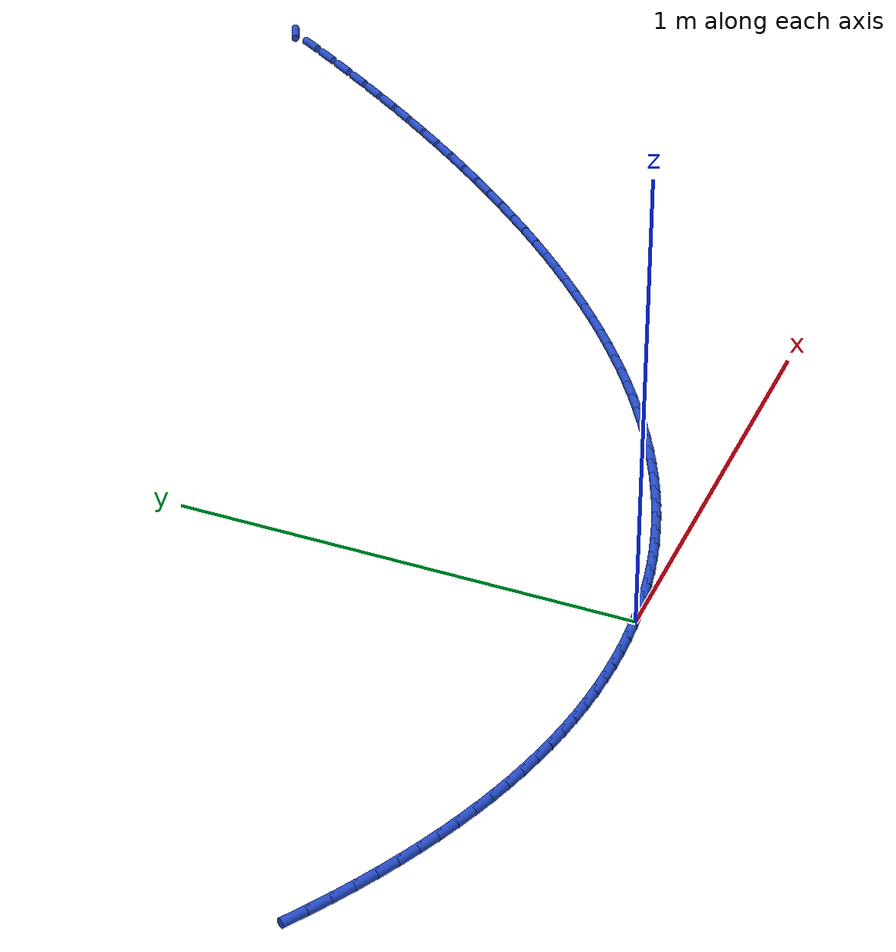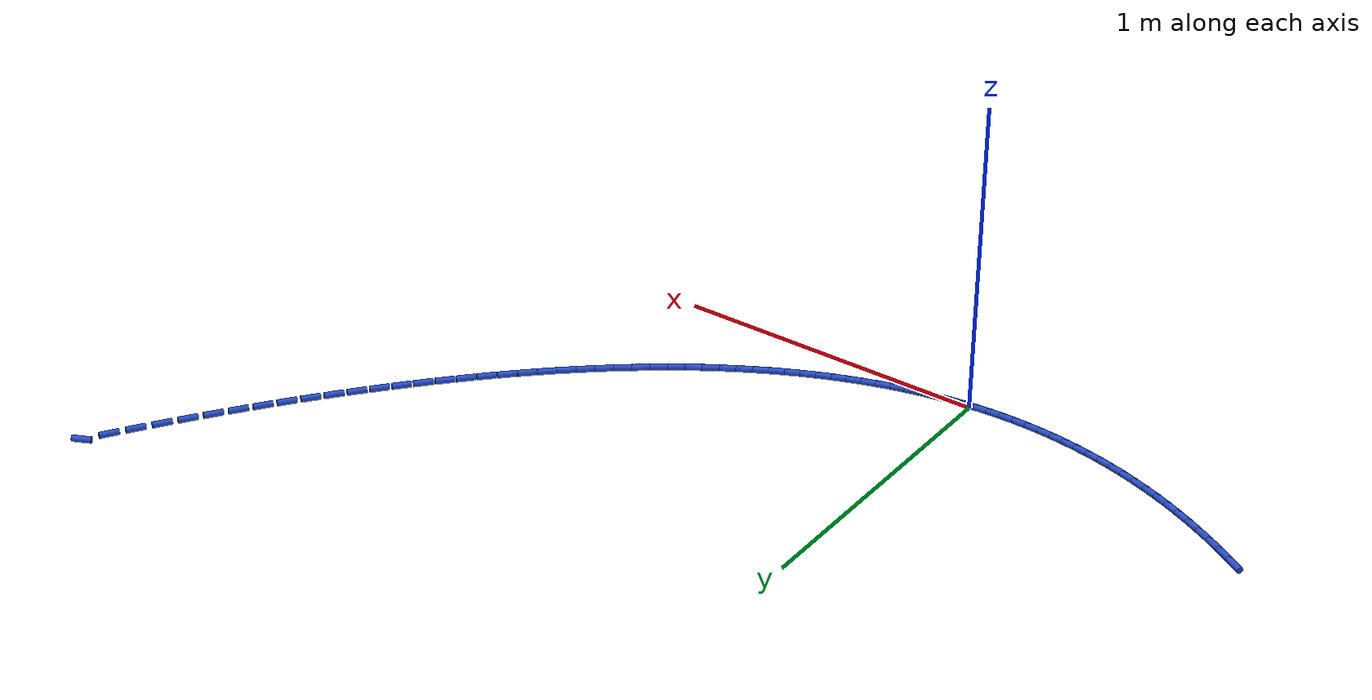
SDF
<?xml version='1.0' encoding='us-ascii'?>
<sdf version="1.4">
<model name="line"><static>1</static><link name="link_0"><pose frame="">-1.0 0.26578743000738836 0.01 0 1.57 -0.5543240321054791</pose><collision name="collision"><geometry><cylinder><radius>0.01</radius><length>0.06</length></cylinder></geometry></collision><visual name="visual"><material><script><name>RepeatedBlueTexture</name><uri>file://materials/scripts/repeated.material</uri></script></material><geometry><cylinder><radius>0.01</radius><length>0.06</length></cylinder></geometry></visual></link><static>1</static><link name="link_1"><pose frame="">-0.9565217391304348 0.23887132165634306 0.01 0 1.57 -0.5307715101158248</pose><collision name="collision"><geometry><cylinder><radius>0.01</radius><length>0.06</length></cylinder></geometry></collision><visual name="visual"><material><script><name>RepeatedBlueTexture</name><uri>file://materials/scripts/repeated.material</uri></script></material><geometry><cylinder><radius>0.01</radius><length>0.06</length></cylinder></geometry></visual></link><static>1</static><link name="link_2"><pose frame="">-0.9130434782608696 0.2133515890446918 0.01 0 1.57 -0.5065494110816988</pose><collision name="collision"><geometry><cylinder><radius>0.01</radius><length>0.06</length></cylinder></geometry></collision><visual name="visual"><material><script><name>RepeatedBlueTexture</name><uri>file://materials/scripts/repeated.material</uri></script></material><geometry><cylinder><radius>0.01</radius><length>0.06</length></cylinder></geometry></visual></link><static>1</static><link name="link_3"><pose frame="">-0.8695652173913043 0.18922823217243423 0.01 0 1.57 -0.48165841015056077</pose><collision name="collision"><geometry><cylinder><radius>0.01</radius><length>0.06</length></cylinder></geometry></collision><visual name="visual"><material><script><name>RepeatedBlueTexture</name><uri>file://materials/scripts/repeated.material</uri></script></material><geometry><cylinder><radius>0.01</radius><length>0.06</length></cylinder></geometry></visual></link><static>1</static><link name="link_4"><pose frame="">-0.8260869565217391 0.16650125103957067 0.01 0 1.57 -0.4561025332396012</pose><collision name="collision"><geometry><cylinder><radius>0.01</radius><length>0.06</length></cylinder></geometry></collision><visual name="visual"><material><script><name>RepeatedBlueTexture</name><uri>file://materials/scripts/repeated.material</uri></script></material><geometry><cylinder><radius>0.01</radius><length>0.06</length></cylinder></geometry></visual></link><static>1</static><link name="link_5"><pose frame="">-0.782608695652174 0.14517064564610094 0.01 0 1.57 -0.42988949471557325</pose><collision name="collision"><geometry><cylinder><radius>0.01</radius><length>0.06</length></cylinder></geometry></collision><visual name="visual"><material><script><name>RepeatedBlueTexture</name><uri>file://materials/scripts/repeated.material</uri></script></material><geometry><cylinder><radius>0.01</radius><length>0.06</length></cylinder></geometry></visual></link><static>1</static><link name="link_6"><pose frame="">-0.7391304347826086 0.12523641599202506 0.01 0 1.57 -0.4030310188374935</pose><collision name="collision"><geometry><cylinder><radius>0.01</radius><length>0.06</length></cylinder></geometry></collision><visual name="visual"><material><script><name>RepeatedBlueTexture</name><uri>file://materials/scripts/repeated.material</uri></script></material><geometry><cylinder><radius>0.01</radius><length>0.06</length></cylinder></geometry></visual></link><static>1</static><link name="link_7"><pose frame="">-0.6956521739130435 0.10669856207734317 0.01 0 1.57 -0.37554313374267445</pose><collision name="collision"><geometry><cylinder><radius>0.01</radius><length>0.06</length></cylinder></geometry></collision><visual name="visual"><material><script><name>RepeatedBlueTexture</name><uri>file://materials/scripts/repeated.material</uri></script></material><geometry><cylinder><radius>0.01</radius><length>0.06</length></cylinder></geometry></visual></link><static>1</static><link name="link_8"><pose frame="">-0.6521739130434783 0.08955708390205513 0.01 0 1.57 -0.3474464256340108</pose><collision name="collision"><geometry><cylinder><radius>0.01</radius><length>0.06</length></cylinder></geometry></collision><visual name="visual"><material><script><name>RepeatedBlueTexture</name><uri>file://materials/scripts/repeated.material</uri></script></material><geometry><cylinder><radius>0.01</radius><length>0.06</length></cylinder></geometry></visual></link><static>1</static><link name="link_9"><pose frame="">-0.6086956521739131 0.07381198146616093 0.01 0 1.57 -0.3187662400958338</pose><collision name="collision"><geometry><cylinder><radius>0.01</radius><length>0.06</length></cylinder></geometry></collision><visual name="visual"><material><script><name>RepeatedBlueTexture</name><uri>file://materials/scripts/repeated.material</uri></script></material><geometry><cylinder><radius>0.01</radius><length>0.06</length></cylinder></geometry></visual></link><static>1</static><link name="link_10"><pose frame="">-0.5652173913043479 0.05946325476966063 0.01 0 1.57 -0.28953281727080593</pose><collision name="collision"><geometry><cylinder><radius>0.01</radius><length>0.06</length></cylinder></geometry></collision><visual name="visual"><material><script><name>RepeatedBlueTexture</name><uri>file://materials/scripts/repeated.material</uri></script></material><geometry><cylinder><radius>0.01</radius><length>0.06</length></cylinder></geometry></visual></link><static>1</static><link name="link_11"><pose frame="">-0.5217391304347826 0.04651090381255419 0.01 0 1.57 -0.25978134810674064</pose><collision name="collision"><geometry><cylinder><radius>0.01</radius><length>0.06</length></cylinder></geometry></collision><visual name="visual"><material><script><name>RepeatedBlueTexture</name><uri>file://materials/scripts/repeated.material</uri></script></material><geometry><cylinder><radius>0.01</radius><length>0.06</length></cylinder></geometry></visual></link><static>1</static><link name="link_12"><pose frame="">-0.4782608695652174 0.03495492859484163 0.01 0 1.57 -0.22955194014041863</pose><collision name="collision"><geometry><cylinder><radius>0.01</radius><length>0.06</length></cylinder></geometry></collision><visual name="visual"><material><script><name>RepeatedBlueTexture</name><uri>file://materials/scripts/repeated.material</uri></script></material><geometry><cylinder><radius>0.01</radius><length>0.06</length></cylinder></geometry></visual></link><static>1</static><link name="link_13"><pose frame="">-0.4347826086956522 0.024795329116522997 0.01 0 1.57 -0.19888948339221402</pose><collision name="collision"><geometry><cylinder><radius>0.01</radius><length>0.06</length></cylinder></geometry></collision><visual name="visual"><material><script><name>RepeatedBlueTexture</name><uri>file://materials/scripts/repeated.material</uri></script></material><geometry><cylinder><radius>0.01</radius><length>0.06</length></cylinder></geometry></visual></link><static>1</static><link name="link_14"><pose frame="">-0.3913043478260869 0.016032105377598208 0.01 0 1.57 -0.16784340990574292</pose><collision name="collision"><geometry><cylinder><radius>0.01</radius><length>0.06</length></cylinder></geometry></collision><visual name="visual"><material><script><name>RepeatedBlueTexture</name><uri>file://materials/scripts/repeated.material</uri></script></material><geometry><cylinder><radius>0.01</radius><length>0.06</length></cylinder></geometry></visual></link><static>1</static><link name="link_15"><pose frame="">-0.34782608695652173 0.008665257378067337 0.01 0 1.57 -0.1364673442098012</pose><collision name="collision"><geometry><cylinder><radius>0.01</radius><length>0.06</length></cylinder></geometry></collision><visual name="visual"><material><script><name>RepeatedBlueTexture</name><uri>file://materials/scripts/repeated.material</uri></script></material><geometry><cylinder><radius>0.01</radius><length>0.06</length></cylinder></geometry></visual></link><static>1</static><link name="link_16"><pose frame="">-0.30434782608695654 0.0026947851179303095 0.01 0 1.57 -0.10481864634996019</pose><collision name="collision"><geometry><cylinder><radius>0.01</radius><length>0.06</length></cylinder></geometry></collision><visual name="visual"><material><script><name>RepeatedBlueTexture</name><uri>file://materials/scripts/repeated.material</uri></script></material><geometry><cylinder><radius>0.01</radius><length>0.06</length></cylinder></geometry></visual></link><static>1</static><link name="link_17"><pose frame="">-0.26086956521739135 -0.0018793114028127916 0.01 0 1.57 -0.07295785389700156</pose><collision name="collision"><geometry><cylinder><radius>0.01</radius><length>0.06</length></cylinder></geometry></collision><visual name="visual"><material><script><name>RepeatedBlueTexture</name><uri>file://materials/scripts/repeated.material</uri></script></material><geometry><cylinder><radius>0.01</radius><length>0.06</length></cylinder></geometry></visual></link><static>1</static><link name="link_18"><pose frame="">-0.21739130434782616 -0.005057032184162064 0.01 0 1.57 -0.04094803418190355</pose><collision name="collision"><geometry><cylinder><radius>0.01</radius><length>0.06</length></cylinder></geometry></collision><visual name="visual"><material><script><name>RepeatedBlueTexture</name><uri>file://materials/scripts/repeated.material</uri></script></material><geometry><cylinder><radius>0.01</radius><length>0.06</length></cylinder></geometry></visual></link><static>1</static><link name="link_19"><pose frame="">-0.17391304347826086 -0.006838377226117381 0.01 0 1.57 -0.008854062581946752</pose><collision name="collision"><geometry><cylinder><radius>0.01</radius><length>0.06</length></cylinder></geometry></collision><visual name="visual"><material><script><name>RepeatedBlueTexture</name><uri>file://materials/scripts/repeated.material</uri></script></material><geometry><cylinder><radius>0.01</radius><length>0.06</length></cylinder></geometry></visual></link><static>1</static><link name="link_20"><pose frame="">-0.13043478260869568 -0.007223346528678898 0.01 0 1.57 0.02325815337118715</pose><collision name="collision"><geometry><cylinder><radius>0.01</radius><length>0.06</length></cylinder></geometry></collision><visual name="visual"><material><script><name>RepeatedBlueTexture</name><uri>file://materials/scripts/repeated.material</uri></script></material><geometry><cylinder><radius>0.01</radius><length>0.06</length></cylinder></geometry></visual></link><static>1</static><link name="link_21"><pose frame="">-0.08695652173913049 -0.0062119400918464185 0.01 0 1.57 0.05532248130231079</pose><collision name="collision"><geometry><cylinder><radius>0.01</radius><length>0.06</length></cylinder></geometry></collision><visual name="visual"><material><script><name>RepeatedBlueTexture</name><uri>file://materials/scripts/repeated.material</uri></script></material><geometry><cylinder><radius>0.01</radius><length>0.06</length></cylinder></geometry></visual></link><static>1</static><link name="link_22"><pose frame="">-0.04347826086956519 -0.0038041579156201932 0.01 0 1.57 0.08727337819503285</pose><collision name="collision"><geometry><cylinder><radius>0.01</radius><length>0.06</length></cylinder></geometry></collision><visual name="visual"><material><script><name>RepeatedBlueTexture</name><uri>file://materials/scripts/repeated.material</uri></script></material><geometry><cylinder><radius>0.01</radius><length>0.06</length></cylinder></geometry></visual></link><static>1</static><link name="link_23"><pose frame="">0.0 0.0 0.01 0 1.57 0.11904668656615901</pose><collision name="collision"><geometry><cylinder><radius>0.01</radius><length>0.06</length></cylinder></geometry></collision><visual name="visual"><material><script><name>RepeatedBlueTexture</name><uri>file://materials/scripts/repeated.material</uri></script></material><geometry><cylinder><radius>0.01</radius><length>0.06</length></cylinder></geometry></visual></link><static>1</static><link name="link_24"><pose frame="">0.04347826086956519 0.005200533655014078 0.01 0 1.57 0.15058038871455098</pose><collision name="collision"><geometry><cylinder><radius>0.01</radius><length>0.06</length></cylinder></geometry></collision><visual name="visual"><material><script><name>RepeatedBlueTexture</name><uri>file://materials/scripts/repeated.material</uri></script></material><geometry><cylinder><radius>0.01</radius><length>0.06</length></cylinder></geometry></visual></link><static>1</static><link name="link_25"><pose frame="">0.08695652173913038 0.011797443049421985 0.01 0 1.57 0.18181529748861675</pose><collision name="collision"><geometry><cylinder><radius>0.01</radius><length>0.06</length></cylinder></geometry></collision><visual name="visual"><material><script><name>RepeatedBlueTexture</name><uri>file://materials/scripts/repeated.material</uri></script></material><geometry><cylinder><radius>0.01</radius><length>0.06</length></cylinder></geometry></visual></link><static>1</static><link name="link_26"><pose frame="">0.13043478260869557 0.019790728183223777 0.01 0 1.57 0.2126956654719445</pose><collision name="collision"><geometry><cylinder><radius>0.01</radius><length>0.06</length></cylinder></geometry></collision><visual name="visual"><material><script><name>RepeatedBlueTexture</name><uri>file://materials/scripts/repeated.material</uri></script></material><geometry><cylinder><radius>0.01</radius><length>0.06</length></cylinder></geometry></visual></link><static>1</static><link name="link_27"><pose frame="">0.17391304347826075 0.02918038905641951 0.01 0 1.57 0.243169698758467</pose><collision name="collision"><geometry><cylinder><radius>0.01</radius><length>0.06</length></cylinder></geometry></collision><visual name="visual"><material><script><name>RepeatedBlueTexture</name><uri>file://materials/scripts/repeated.material</uri></script></material><geometry><cylinder><radius>0.01</radius><length>0.06</length></cylinder></geometry></visual></link><static>1</static><link name="link_28"><pose frame="">0.21739130434782616 0.039966425669009153 0.01 0 1.57 0.27318996622834696</pose><collision name="collision"><geometry><cylinder><radius>0.01</radius><length>0.06</length></cylinder></geometry></collision><visual name="visual"><material><script><name>RepeatedBlueTexture</name><uri>file://materials/scripts/repeated.material</uri></script></material><geometry><cylinder><radius>0.01</radius><length>0.06</length></cylinder></geometry></visual></link><static>1</static><link name="link_29"><pose frame="">0.26086956521739135 0.05214883802099257 0.01 0 1.57 0.30271370008264153</pose><collision name="collision"><geometry><cylinder><radius>0.01</radius><length>0.06</length></cylinder></geometry></collision><visual name="visual"><material><script><name>RepeatedBlueTexture</name><uri>file://materials/scripts/repeated.material</uri></script></material><geometry><cylinder><radius>0.01</radius><length>0.06</length></cylinder></geometry></visual></link><static>1</static><link name="link_30"><pose frame="">0.30434782608695654 0.06572762611236993 0.01 0 1.57 0.3317029880140579</pose><collision name="collision"><geometry><cylinder><radius>0.01</radius><length>0.06</length></cylinder></geometry></collision><visual name="visual"><material><script><name>RepeatedBlueTexture</name><uri>file://materials/scripts/repeated.material</uri></script></material><geometry><cylinder><radius>0.01</radius><length>0.06</length></cylinder></geometry></visual></link><static>1</static><link name="link_31"><pose frame="">0.34782608695652173 0.08070278994314112 0.01 0 1.57 0.3601248615045992</pose><collision name="collision"><geometry><cylinder><radius>0.01</radius><length>0.06</length></cylinder></geometry></collision><visual name="visual"><material><script><name>RepeatedBlueTexture</name><uri>file://materials/scripts/repeated.material</uri></script></material><geometry><cylinder><radius>0.01</radius><length>0.06</length></cylinder></geometry></visual></link><static>1</static><link name="link_32"><pose frame="">0.3913043478260869 0.09707432951330625 0.01 0 1.57 0.38795128814682983</pose><collision name="collision"><geometry><cylinder><radius>0.01</radius><length>0.06</length></cylinder></geometry></collision><visual name="visual"><material><script><name>RepeatedBlueTexture</name><uri>file://materials/scripts/repeated.material</uri></script></material><geometry><cylinder><radius>0.01</radius><length>0.06</length></cylinder></geometry></visual></link><static>1</static><link name="link_33"><pose frame="">0.4347826086956521 0.1148422448228652 0.01 0 1.57 0.4151590784670579</pose><collision name="collision"><geometry><cylinder><radius>0.01</radius><length>0.06</length></cylinder></geometry></collision><visual name="visual"><material><script><name>RepeatedBlueTexture</name><uri>file://materials/scripts/repeated.material</uri></script></material><geometry><cylinder><radius>0.01</radius><length>0.06</length></cylinder></geometry></visual></link><static>1</static><link name="link_34"><pose frame="">0.4782608695652173 0.1340065358718181 0.01 0 1.57 0.44172971944992756</pose><collision name="collision"><geometry><cylinder><radius>0.01</radius><length>0.06</length></cylinder></geometry></collision><visual name="visual"><material><script><name>RepeatedBlueTexture</name><uri>file://materials/scripts/repeated.material</uri></script></material><geometry><cylinder><radius>0.01</radius><length>0.06</length></cylinder></geometry></visual></link><static>1</static><link name="link_35"><pose frame="">0.5217391304347825 0.15456720266016488 0.01 0 1.57 0.46764914786020106</pose><collision name="collision"><geometry><cylinder><radius>0.01</radius><length>0.06</length></cylinder></geometry></collision><visual name="visual"><material><script><name>RepeatedBlueTexture</name><uri>file://materials/scripts/repeated.material</uri></script></material><geometry><cylinder><radius>0.01</radius><length>0.06</length></cylinder></geometry></visual></link><static>1</static><link name="link_36"><pose frame="">0.5652173913043477 0.1765242451879055 0.01 0 1.57 0.4929074766171154</pose><collision name="collision"><geometry><cylinder><radius>0.01</radius><length>0.06</length></cylinder></geometry></collision><visual name="visual"><material><script><name>RepeatedBlueTexture</name><uri>file://materials/scripts/repeated.material</uri></script></material><geometry><cylinder><radius>0.01</radius><length>0.06</length></cylinder></geometry></visual></link><static>1</static><link name="link_37"><pose frame="">0.6086956521739131 0.19987766345504004 0.01 0 1.57 0.5174986870239622</pose><collision name="collision"><geometry><cylinder><radius>0.01</radius><length>0.06</length></cylinder></geometry></collision><visual name="visual"><material><script><name>RepeatedBlueTexture</name><uri>file://materials/scripts/repeated.material</uri></script></material><geometry><cylinder><radius>0.01</radius><length>0.06</length></cylinder></geometry></visual></link><static>1</static><link name="link_38"><pose frame="">0.6521739130434783 0.2246274574615686 0.01 0 1.57 0.541420298731294</pose><collision name="collision"><geometry><cylinder><radius>0.01</radius><length>0.06</length></cylinder></geometry></collision><visual name="visual"><material><script><name>RepeatedBlueTexture</name><uri>file://materials/scripts/repeated.material</uri></script></material><geometry><cylinder><radius>0.01</radius><length>0.06</length></cylinder></geometry></visual></link><static>1</static><link name="link_39"><pose frame="">0.6956521739130435 0.2507736272074907 0.01 0 1.57 0.5646730280595548</pose><collision name="collision"><geometry><cylinder><radius>0.01</radius><length>0.06</length></cylinder></geometry></collision><visual name="visual"><material><script><name>RepeatedBlueTexture</name><uri>file://materials/scripts/repeated.material</uri></script></material><geometry><cylinder><radius>0.01</radius><length>0.06</length></cylinder></geometry></visual></link><static>1</static><link name="link_40"><pose frame="">0.7391304347826086 0.27831617269280695 0.01 0 1.57 0.5872604438580751</pose><collision name="collision"><geometry><cylinder><radius>0.01</radius><length>0.06</length></cylinder></geometry></collision><visual name="visual"><material><script><name>RepeatedBlueTexture</name><uri>file://materials/scripts/repeated.material</uri></script></material><geometry><cylinder><radius>0.01</radius><length>0.06</length></cylinder></geometry></visual></link><static>1</static><link name="link_41"><pose frame="">0.7826086956521738 0.307255093917517 0.01 0 1.57 0.609188628548386</pose><collision name="collision"><geometry><cylinder><radius>0.01</radius><length>0.06</length></cylinder></geometry></collision><visual name="visual"><material><script><name>RepeatedBlueTexture</name><uri>file://materials/scripts/repeated.material</uri></script></material><geometry><cylinder><radius>0.01</radius><length>0.06</length></cylinder></geometry></visual></link><static>1</static><link name="link_42"><pose frame="">0.826086956521739 0.3375903908816209 0.01 0 1.57 0.6304658504817672</pose><collision name="collision"><geometry><cylinder><radius>0.01</radius><length>0.06</length></cylinder></geometry></collision><visual name="visual"><material><script><name>RepeatedBlueTexture</name><uri>file://materials/scripts/repeated.material</uri></script></material><geometry><cylinder><radius>0.01</radius><length>0.06</length></cylinder></geometry></visual></link><static>1</static><link name="link_43"><pose frame="">0.8695652173913042 0.3693220635851186 0.01 0 1.57 0.651102252305441</pose><collision name="collision"><geometry><cylinder><radius>0.01</radius><length>0.06</length></cylinder></geometry></collision><visual name="visual"><material><script><name>RepeatedBlueTexture</name><uri>file://materials/scripts/repeated.material</uri></script></material><geometry><cylinder><radius>0.01</radius><length>0.06</length></cylinder></geometry></visual></link><static>1</static><link name="link_44"><pose frame="">0.9130434782608696 0.40245011202801045 0.01 0 1.57 0.6711095587251191</pose><collision name="collision"><geometry><cylinder><radius>0.01</radius><length>0.06</length></cylinder></geometry></collision><visual name="visual"><material><script><name>RepeatedBlueTexture</name><uri>file://materials/scripts/repeated.material</uri></script></material><geometry><cylinder><radius>0.01</radius><length>0.06</length></cylinder></geometry></visual></link><static>1</static><link name="link_45"><pose frame="">0.9565217391304348 0.4369745362102961 0.01 0 1.57 0.6905008059032829</pose><collision name="collision"><geometry><cylinder><radius>0.01</radius><length>0.06</length></cylinder></geometry></collision><visual name="visual"><material><script><name>RepeatedBlueTexture</name><uri>file://materials/scripts/repeated.material</uri></script></material><geometry><cylinder><radius>0.01</radius><length>0.06</length></cylinder></geometry></visual></link><static>1</static><link name="link_46"><pose frame="">1.0 0.47289533613197554 0.01 0 1.57 0.7092900937545821</pose><collision name="collision"><geometry><cylinder><radius>0.01</radius><length>0.06</length></cylinder></geometry></collision><visual name="visual"><material><script><name>RepeatedBlueTexture</name><uri>file://materials/scripts/repeated.material</uri></script></material><geometry><cylinder><radius>0.01</radius><length>0.06</length></cylinder></geometry></visual></link><static>1</static><link name="link_47"><pose frame="">1.043478260869565 0.5102125117930487 0.01 0 1.57 0.727492361592893</pose><collision name="collision"><geometry><cylinder><radius>0.01</radius><length>0.06</length></cylinder></geometry></collision><visual name="visual"><material><script><name>RepeatedBlueTexture</name><uri>file://materials/scripts/repeated.material</uri></script></material><geometry><cylinder><radius>0.01</radius><length>0.06</length></cylinder></geometry></visual></link><static>1</static><link name="link_48"><pose frame="">1.0869565217391304 0.5489260631935162 0.01 0 1.57 0.7451231869402622</pose><collision name="collision"><geometry><cylinder><radius>0.01</radius><length>0.06</length></cylinder></geometry></collision><visual name="visual"><material><script><name>RepeatedBlueTexture</name><uri>file://materials/scripts/repeated.material</uri></script></material><geometry><cylinder><radius>0.01</radius><length>0.06</length></cylinder></geometry></visual></link><static>1</static><link name="link_49"><pose frame="">1.1304347826086958 0.5890359903333775 0.01 0 1.57 0.7621986068119673</pose><collision name="collision"><geometry><cylinder><radius>0.01</radius><length>0.06</length></cylinder></geometry></collision><visual name="visual"><material><script><name>RepeatedBlueTexture</name><uri>file://materials/scripts/repeated.material</uri></script></material><geometry><cylinder><radius>0.01</radius><length>0.06</length></cylinder></geometry></visual></link><static>1</static><link name="link_50"><pose frame="">1.1739130434782608 0.6305422932126321 0.01 0 1.57 0.7787349604268028</pose><collision name="collision"><geometry><cylinder><radius>0.01</radius><length>0.06</length></cylinder></geometry></collision><visual name="visual"><material><script><name>RepeatedBlueTexture</name><uri>file://materials/scripts/repeated.material</uri></script></material><geometry><cylinder><radius>0.01</radius><length>0.06</length></cylinder></geometry></visual></link><static>1</static><link name="link_51"><pose frame="">1.2173913043478262 0.6734449718312812 0.01 0 1.57 0.7947487520386244</pose><collision name="collision"><geometry><cylinder><radius>0.01</radius><length>0.06</length></cylinder></geometry></collision><visual name="visual"><material><script><name>RepeatedBlueTexture</name><uri>file://materials/scripts/repeated.material</uri></script></material><geometry><cylinder><radius>0.01</radius><length>0.06</length></cylinder></geometry></visual></link><static>1</static><link name="link_52"><pose frame="">1.2608695652173911 0.7177440261893238 0.01 0 1.57 0.8102565324253687</pose><collision name="collision"><geometry><cylinder><radius>0.01</radius><length>0.06</length></cylinder></geometry></collision><visual name="visual"><material><script><name>RepeatedBlueTexture</name><uri>file://materials/scripts/repeated.material</uri></script></material><geometry><cylinder><radius>0.01</radius><length>0.06</length></cylinder></geometry></visual></link><static>1</static><link name="link_53"><pose frame="">1.3043478260869565 0.7634394562867605 0.01 0 1.57 0.8252747974874869</pose><collision name="collision"><geometry><cylinder><radius>0.01</radius><length>0.06</length></cylinder></geometry></collision><visual name="visual"><material><script><name>RepeatedBlueTexture</name><uri>file://materials/scripts/repeated.material</uri></script></material><geometry><cylinder><radius>0.01</radius><length>0.06</length></cylinder></geometry></visual></link><static>1</static><link name="link_54"><pose frame="">1.3478260869565215 0.810531262123591 0.01 0 1.57 0.83981990238294</pose><collision name="collision"><geometry><cylinder><radius>0.01</radius><length>0.06</length></cylinder></geometry></collision><visual name="visual"><material><script><name>RepeatedBlueTexture</name><uri>file://materials/scripts/repeated.material</uri></script></material><geometry><cylinder><radius>0.01</radius><length>0.06</length></cylinder></geometry></visual></link><static>1</static><link name="link_55"><pose frame="">1.391304347826087 0.8590194436998155 0.01 0 1.57 0.8539079896468128</pose><collision name="collision"><geometry><cylinder><radius>0.01</radius><length>0.06</length></cylinder></geometry></collision><visual name="visual"><material><script><name>RepeatedBlueTexture</name><uri>file://materials/scripts/repeated.material</uri></script></material><geometry><cylinder><radius>0.01</radius><length>0.06</length></cylinder></geometry></visual></link><static>1</static><link name="link_56"><pose frame="">1.4347826086956523 0.908904001015434 0.01 0 1.57 0.8675549297974234</pose><collision name="collision"><geometry><cylinder><radius>0.01</radius><length>0.06</length></cylinder></geometry></collision><visual name="visual"><material><script><name>RepeatedBlueTexture</name><uri>file://materials/scripts/repeated.material</uri></script></material><geometry><cylinder><radius>0.01</radius><length>0.06</length></cylinder></geometry></visual></link><static>1</static><link name="link_57"><pose frame="">1.4782608695652173 0.9601849340704458 0.01 0 1.57 0.8807762730086456</pose><collision name="collision"><geometry><cylinder><radius>0.01</radius><length>0.06</length></cylinder></geometry></collision><visual name="visual"><material><script><name>RepeatedBlueTexture</name><uri>file://materials/scripts/repeated.material</uri></script></material><geometry><cylinder><radius>0.01</radius><length>0.06</length></cylinder></geometry></visual></link><static>1</static><link name="link_58"><pose frame="">1.5217391304347827 1.0128622428648522 0.01 0 1.57 0.8935872105207453</pose><collision name="collision"><geometry><cylinder><radius>0.01</radius><length>0.06</length></cylinder></geometry></collision><visual name="visual"><material><script><name>RepeatedBlueTexture</name><uri>file://materials/scripts/repeated.material</uri></script></material><geometry><cylinder><radius>0.01</radius><length>0.06</length></cylinder></geometry></visual></link><static>1</static><link name="link_59"><pose frame="">1.5652173913043477 1.066935927398652 0.01 0 1.57 0.9060025445637465</pose><collision name="collision"><geometry><cylinder><radius>0.01</radius><length>0.06</length></cylinder></geometry></collision><visual name="visual"><material><script><name>RepeatedBlueTexture</name><uri>file://materials/scripts/repeated.material</uri></script></material><geometry><cylinder><radius>0.01</radius><length>0.06</length></cylinder></geometry></visual></link><static>1</static><link name="link_60"><pose frame="">1.608695652173913 1.122405987671846 0.01 0 1.57 0.9180366656727081</pose><collision name="collision"><geometry><cylinder><radius>0.01</radius><length>0.06</length></cylinder></geometry></collision><visual name="visual"><material><script><name>RepeatedBlueTexture</name><uri>file://materials/scripts/repeated.material</uri></script></material><geometry><cylinder><radius>0.01</radius><length>0.06</length></cylinder></geometry></visual></link><static>1</static><link name="link_61"><pose frame="">1.652173913043478 1.1792724236844334 0.01 0 1.57 0.9297035363795776</pose><collision name="collision"><geometry><cylinder><radius>0.01</radius><length>0.06</length></cylinder></geometry></collision><visual name="visual"><material><script><name>RepeatedBlueTexture</name><uri>file://materials/scripts/repeated.material</uri></script></material><geometry><cylinder><radius>0.01</radius><length>0.06</length></cylinder></geometry></visual></link><static>1</static><link name="link_62"><pose frame="">1.6956521739130435 1.237535235436415 0.01 0 1.57 0.9410166803691503</pose><collision name="collision"><geometry><cylinder><radius>0.01</radius><length>0.06</length></cylinder></geometry></collision><visual name="visual"><material><script><name>RepeatedBlueTexture</name><uri>file://materials/scripts/repeated.material</uri></script></material><geometry><cylinder><radius>0.01</radius><length>0.06</length></cylinder></geometry></visual></link><static>1</static><link name="link_63"><pose frame="">1.7391304347826084 1.2971944229277903 0.01 0 1.57 0.9519891762843147</pose><collision name="collision"><geometry><cylinder><radius>0.01</radius><length>0.06</length></cylinder></geometry></collision><visual name="visual"><material><script><name>RepeatedBlueTexture</name><uri>file://materials/scripts/repeated.material</uri></script></material><geometry><cylinder><radius>0.01</radius><length>0.06</length></cylinder></geometry></visual></link><static>1</static><link name="link_64"><pose frame="">1.7826086956521738 1.35824998615856 0.01 0 1.57 0.9626336554580549</pose><collision name="collision"><geometry><cylinder><radius>0.01</radius><length>0.06</length></cylinder></geometry></collision><visual name="visual"><material><script><name>RepeatedBlueTexture</name><uri>file://materials/scripts/repeated.material</uri></script></material><geometry><cylinder><radius>0.01</radius><length>0.06</length></cylinder></geometry></visual></link><static>1</static><link name="link_65"><pose frame="">1.8260869565217392 1.4207019251287234 0.01 0 1.57 0.9729623029347538</pose><collision name="collision"><geometry><cylinder><radius>0.01</radius><length>0.06</length></cylinder></geometry></collision><visual name="visual"><material><script><name>RepeatedBlueTexture</name><uri>file://materials/scripts/repeated.material</uri></script></material><geometry><cylinder><radius>0.01</radius><length>0.06</length></cylinder></geometry></visual></link><static>1</static><link name="link_66"><pose frame="">1.8695652173913042 1.4845502398382802 0.01 0 1.57 0.9829868612217175</pose><collision name="collision"><geometry><cylinder><radius>0.01</radius><length>0.06</length></cylinder></geometry></collision><visual name="visual"><material><script><name>RepeatedBlueTexture</name><uri>file://materials/scripts/repeated.material</uri></script></material><geometry><cylinder><radius>0.01</radius><length>0.06</length></cylinder></geometry></visual></link><static>1</static><link name="link_67"><pose frame="">1.9130434782608696 1.5497949302872314 0.01 0 1.57 0.9927186362829296</pose><collision name="collision"><geometry><cylinder><radius>0.01</radius><length>0.06</length></cylinder></geometry></collision><visual name="visual"><material><script><name>RepeatedBlueTexture</name><uri>file://materials/scripts/repeated.material</uri></script></material><geometry><cylinder><radius>0.01</radius><length>0.06</length></cylinder></geometry></visual></link><static>1</static><link name="link_68"><pose frame="">1.9565217391304346 1.6164359964755761 0.01 0 1.57 1.0021685053511293</pose><collision name="collision"><geometry><cylinder><radius>0.01</radius><length>0.06</length></cylinder></geometry></collision><visual name="visual"><material><script><name>RepeatedBlueTexture</name><uri>file://materials/scripts/repeated.material</uri></script></material><geometry><cylinder><radius>0.01</radius><length>0.06</length></cylinder></geometry></visual></link><static>1</static><link name="link_69"><pose frame="">2.0 1.684473438403315 0.01 0 1.57 0.44172971944992695</pose><collision name="collision"><geometry><cylinder><radius>0.01</radius><length>0.06</length></cylinder></geometry></collision><visual name="visual"><material><script><name>RepeatedBlueTexture</name><uri>file://materials/scripts/repeated.material</uri></script></material><geometry><cylinder><radius>0.01</radius><length>0.06</length></cylinder></geometry></visual></link></model></sdf>
